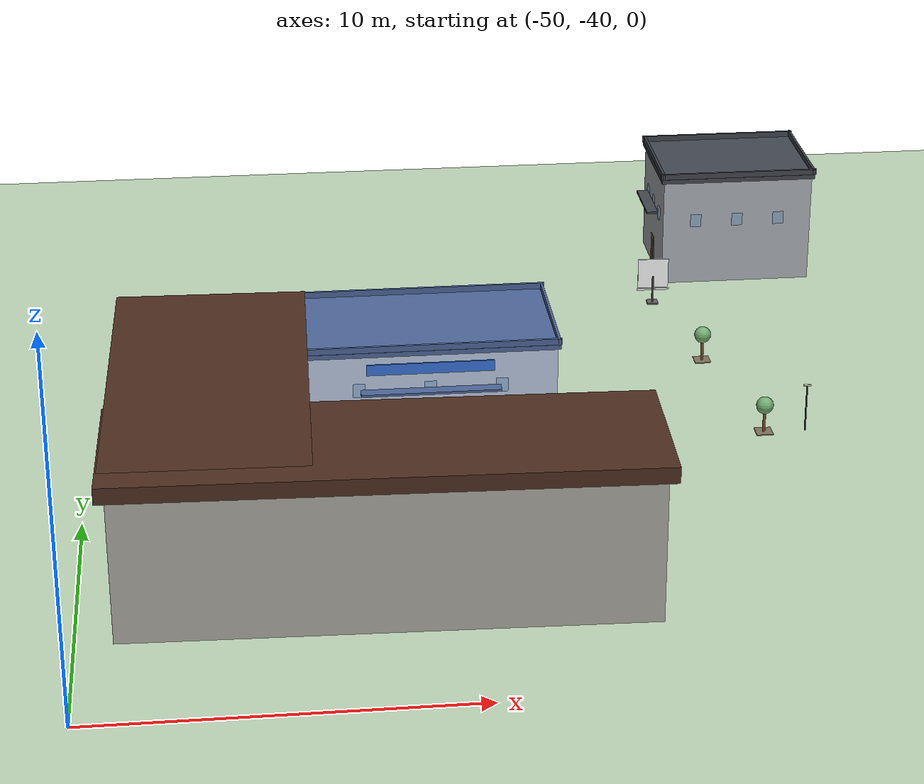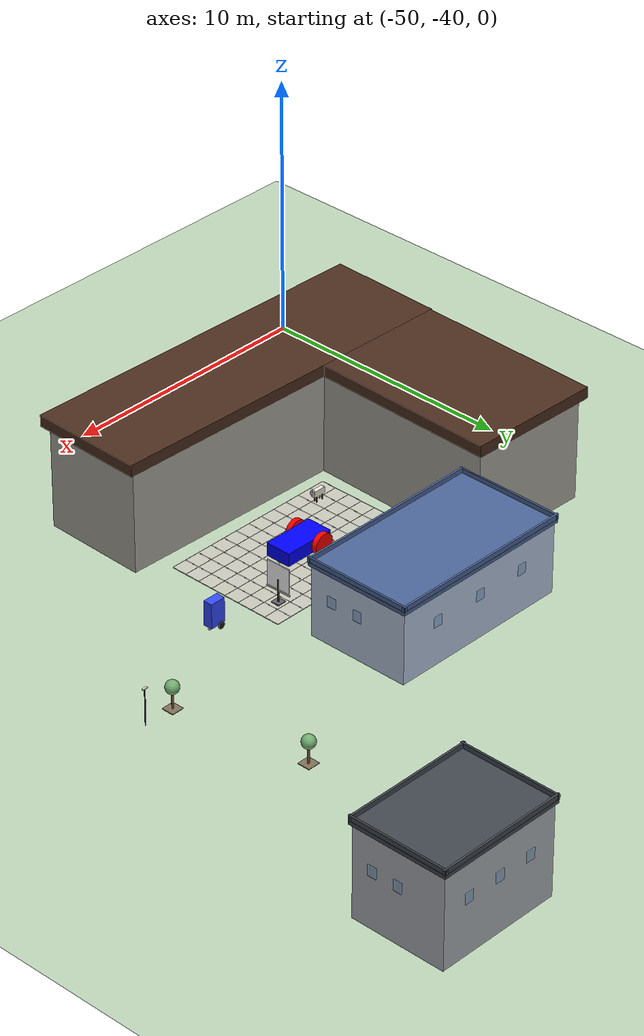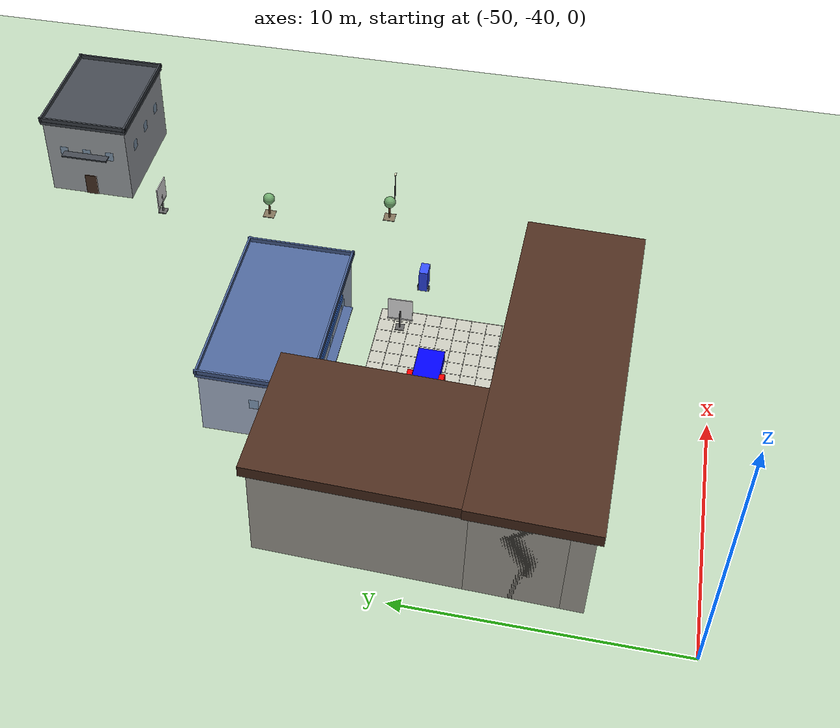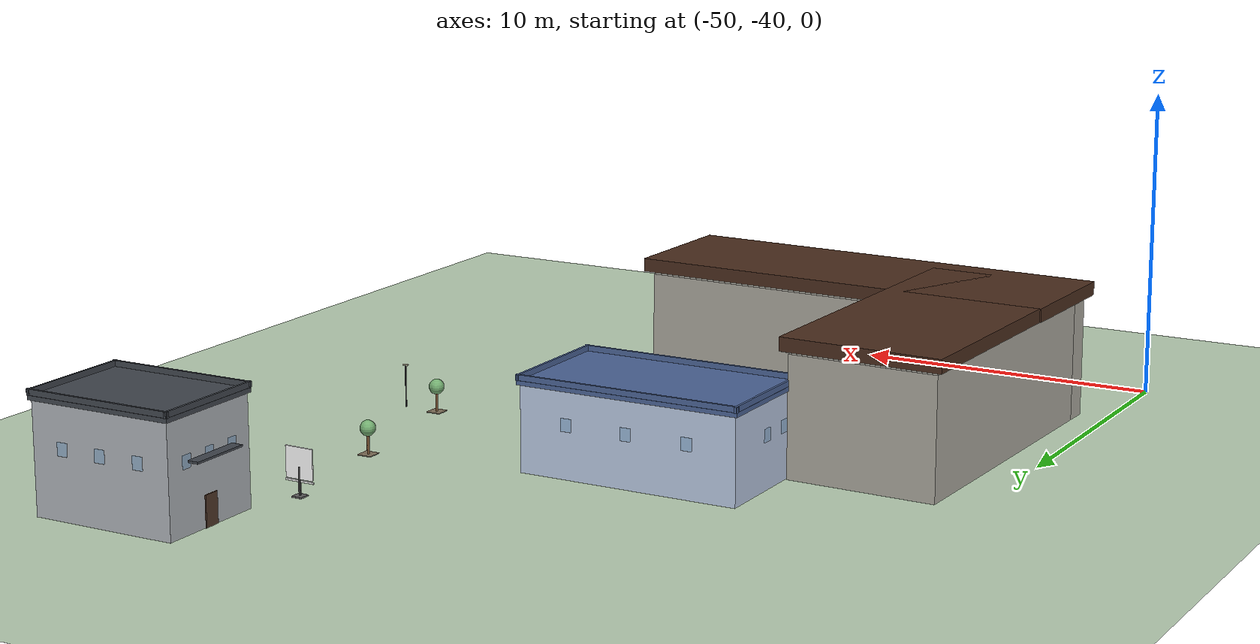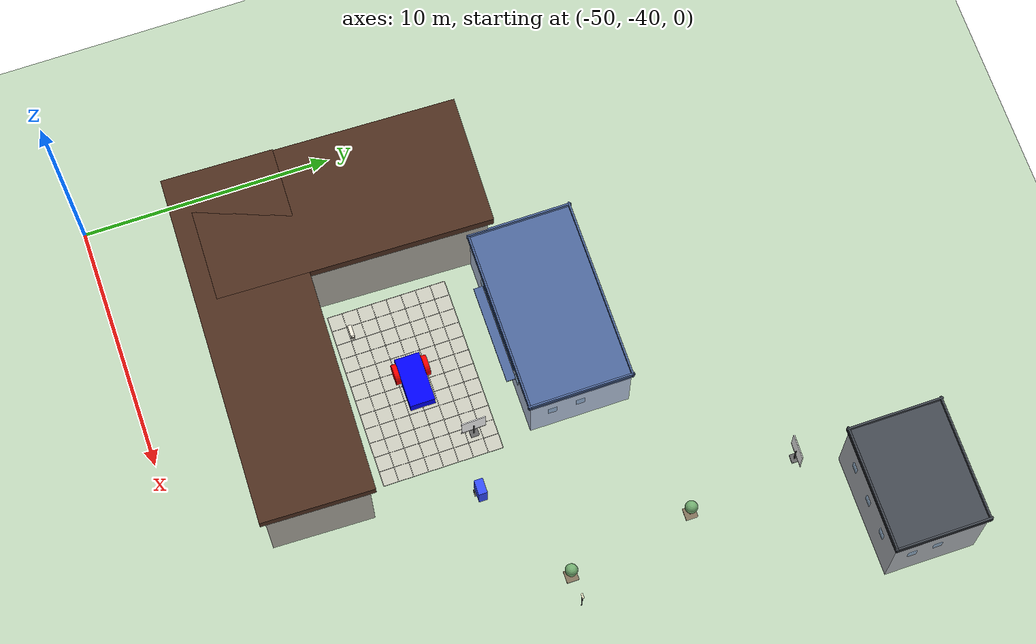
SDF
<sdf version="1.10">
 <world name="city_town_real_improved">
  <model name="dock_pad">
   <static>true</static>
   <pose>-40 -29.6 0 0 0 0</pose>
   <link name="link">
    <collision name="plaza_col">
     <pose>0 0 0.008 0 0 0</pose>
     <geometry><box><size>7.2 4.8 0.016</size></box></geometry>
    </collision>
    <visual name="plaza_vis">
     <pose>0 0 0.008 0 0 0</pose>
     <geometry><box><size>7.2 4.8 0.016</size></box></geometry>
     <material>
      <ambient>0.779999971 0.779999971 0.730000019 1</ambient>
      <diffuse>0.779999971 0.779999971 0.730000019 1</diffuse>
      <specular>0.0799999982 0.0799999982 0.0799999982 1</specular>
     </material>
    </visual>
    <visual name="gx0">
     <pose>-3.6 0 0.0164 0 0 0</pose>
     <geometry><box><size>0.016 4.8 0.002</size></box></geometry>
     <material>
      <ambient>0.639999986 0.639999986 0.600000024 1</ambient>
      <diffuse>0.639999986 0.639999986 0.600000024 1</diffuse>
      <specular>0.0799999982 0.0799999982 0.0799999982 1</specular>
     </material>
    </visual>
    <visual name="gx1">
     <pose>-3 0 0.0164 0 0 0</pose>
     <geometry><box><size>0.016 4.8 0.002</size></box></geometry>
     <material>
      <ambient>0.639999986 0.639999986 0.600000024 1</ambient>
      <diffuse>0.639999986 0.639999986 0.600000024 1</diffuse>
      <specular>0.0799999982 0.0799999982 0.0799999982 1</specular>
     </material>
    </visual>
    <visual name="gx2">
     <pose>-2.4 0 0.0164 0 0 0</pose>
     <geometry><box><size>0.016 4.8 0.002</size></box></geometry>
     <material>
      <ambient>0.639999986 0.639999986 0.600000024 1</ambient>
      <diffuse>0.639999986 0.639999986 0.600000024 1</diffuse>
      <specular>0.0799999982 0.0799999982 0.0799999982 1</specular>
     </material>
    </visual>
    <visual name="gx3">
     <pose>-1.8 0 0.0164 0 0 0</pose>
     <geometry><box><size>0.016 4.8 0.002</size></box></geometry>
     <material>
      <ambient>0.639999986 0.639999986 0.600000024 1</ambient>
      <diffuse>0.639999986 0.639999986 0.600000024 1</diffuse>
      <specular>0.0799999982 0.0799999982 0.0799999982 1</specular>
     </material>
    </visual>
    <visual name="gx4">
     <pose>-1.2 0 0.0164 0 0 0</pose>
     <geometry><box><size>0.016 4.8 0.002</size></box></geometry>
     <material>
      <ambient>0.639999986 0.639999986 0.600000024 1</ambient>
      <diffuse>0.639999986 0.639999986 0.600000024 1</diffuse>
      <specular>0.0799999982 0.0799999982 0.0799999982 1</specular>
     </material>
    </visual>
    <visual name="gx5">
     <pose>-0.6 0 0.0164 0 0 0</pose>
     <geometry><box><size>0.016 4.8 0.002</size></box></geometry>
     <material>
      <ambient>0.639999986 0.639999986 0.600000024 1</ambient>
      <diffuse>0.639999986 0.639999986 0.600000024 1</diffuse>
      <specular>0.0799999982 0.0799999982 0.0799999982 1</specular>
     </material>
    </visual>
    <visual name="gx6">
     <pose>0 0 0.0164 0 0 0</pose>
     <geometry><box><size>0.016 4.8 0.002</size></box></geometry>
     <material>
      <ambient>0.639999986 0.639999986 0.600000024 1</ambient>
      <diffuse>0.639999986 0.639999986 0.600000024 1</diffuse>
      <specular>0.0799999982 0.0799999982 0.0799999982 1</specular>
     </material>
    </visual>
    <visual name="gx7">
     <pose>0.6 0 0.0164 0 0 0</pose>
     <geometry><box><size>0.016 4.8 0.002</size></box></geometry>
     <material>
      <ambient>0.639999986 0.639999986 0.600000024 1</ambient>
      <diffuse>0.639999986 0.639999986 0.600000024 1</diffuse>
      <specular>0.0799999982 0.0799999982 0.0799999982 1</specular>
     </material>
    </visual>
    <visual name="gx8">
     <pose>1.2 0 0.0164 0 0 0</pose>
     <geometry><box><size>0.016 4.8 0.002</size></box></geometry>
     <material>
      <ambient>0.639999986 0.639999986 0.600000024 1</ambient>
      <diffuse>0.639999986 0.639999986 0.600000024 1</diffuse>
      <specular>0.0799999982 0.0799999982 0.0799999982 1</specular>
     </material>
    </visual>
    <visual name="gx9">
     <pose>1.8 0 0.0164 0 0 0</pose>
     <geometry><box><size>0.016 4.8 0.002</size></box></geometry>
     <material>
      <ambient>0.639999986 0.639999986 0.600000024 1</ambient>
      <diffuse>0.639999986 0.639999986 0.600000024 1</diffuse>
      <specular>0.0799999982 0.0799999982 0.0799999982 1</specular>
     </material>
    </visual>
    <visual name="gx10">
     <pose>2.4 0 0.0164 0 0 0</pose>
     <geometry><box><size>0.016 4.8 0.002</size></box></geometry>
     <material>
      <ambient>0.639999986 0.639999986 0.600000024 1</ambient>
      <diffuse>0.639999986 0.639999986 0.600000024 1</diffuse>
      <specular>0.0799999982 0.0799999982 0.0799999982 1</specular>
     </material>
    </visual>
    <visual name="gx11">
     <pose>3 0 0.0164 0 0 0</pose>
     <geometry><box><size>0.016 4.8 0.002</size></box></geometry>
     <material>
      <ambient>0.639999986 0.639999986 0.600000024 1</ambient>
      <diffuse>0.639999986 0.639999986 0.600000024 1</diffuse>
      <specular>0.0799999982 0.0799999982 0.0799999982 1</specular>
     </material>
    </visual>
    <visual name="gx12">
     <pose>3.6 0 0.0164 0 0 0</pose>
     <geometry><box><size>0.016 4.8 0.002</size></box></geometry>
     <material>
      <ambient>0.639999986 0.639999986 0.600000024 1</ambient>
      <diffuse>0.639999986 0.639999986 0.600000024 1</diffuse>
      <specular>0.0799999982 0.0799999982 0.0799999982 1</specular>
     </material>
    </visual>
    <visual name="gy0">
     <pose>0 -2.4 0.0164 0 0 0</pose>
     <geometry><box><size>7.2 0.016 0.002</size></box></geometry>
     <material>
      <ambient>0.639999986 0.639999986 0.600000024 1</ambient>
      <diffuse>0.639999986 0.639999986 0.600000024 1</diffuse>
      <specular>0.0799999982 0.0799999982 0.0799999982 1</specular>
     </material>
    </visual>
    <visual name="gy1">
     <pose>0 -1.8 0.0164 0 0 0</pose>
     <geometry><box><size>7.2 0.016 0.002</size></box></geometry>
     <material>
      <ambient>0.639999986 0.639999986 0.600000024 1</ambient>
      <diffuse>0.639999986 0.639999986 0.600000024 1</diffuse>
      <specular>0.0799999982 0.0799999982 0.0799999982 1</specular>
     </material>
    </visual>
    <visual name="gy2">
     <pose>0 -1.2 0.0164 0 0 0</pose>
     <geometry><box><size>7.2 0.016 0.002</size></box></geometry>
     <material>
      <ambient>0.639999986 0.639999986 0.600000024 1</ambient>
      <diffuse>0.639999986 0.639999986 0.600000024 1</diffuse>
      <specular>0.0799999982 0.0799999982 0.0799999982 1</specular>
     </material>
    </visual>
    <visual name="gy3">
     <pose>0 -0.6 0.0164 0 0 0</pose>
     <geometry><box><size>7.2 0.016 0.002</size></box></geometry>
     <material>
      <ambient>0.639999986 0.639999986 0.600000024 1</ambient>
      <diffuse>0.639999986 0.639999986 0.600000024 1</diffuse>
      <specular>0.0799999982 0.0799999982 0.0799999982 1</specular>
     </material>
    </visual>
    <visual name="gy4">
     <pose>0 0 0.0164 0 0 0</pose>
     <geometry><box><size>7.2 0.016 0.002</size></box></geometry>
     <material>
      <ambient>0.639999986 0.639999986 0.600000024 1</ambient>
      <diffuse>0.639999986 0.639999986 0.600000024 1</diffuse>
      <specular>0.0799999982 0.0799999982 0.0799999982 1</specular>
     </material>
    </visual>
    <visual name="gy5">
     <pose>0 0.6 0.0164 0 0 0</pose>
     <geometry><box><size>7.2 0.016 0.002</size></box></geometry>
     <material>
      <ambient>0.639999986 0.639999986 0.600000024 1</ambient>
      <diffuse>0.639999986 0.639999986 0.600000024 1</diffuse>
      <specular>0.0799999982 0.0799999982 0.0799999982 1</specular>
     </material>
    </visual>
    <visual name="gy6">
     <pose>0 1.2 0.0164 0 0 0</pose>
     <geometry><box><size>7.2 0.016 0.002</size></box></geometry>
     <material>
      <ambient>0.639999986 0.639999986 0.600000024 1</ambient>
      <diffuse>0.639999986 0.639999986 0.600000024 1</diffuse>
      <specular>0.0799999982 0.0799999982 0.0799999982 1</specular>
     </material>
    </visual>
    <visual name="gy7">
     <pose>0 1.8 0.0164 0 0 0</pose>
     <geometry><box><size>7.2 0.016 0.002</size></box></geometry>
     <material>
      <ambient>0.639999986 0.639999986 0.600000024 1</ambient>
      <diffuse>0.639999986 0.639999986 0.600000024 1</diffuse>
      <specular>0.0799999982 0.0799999982 0.0799999982 1</specular>
     </material>
    </visual>
    <visual name="gy8">
     <pose>0 2.4 0.0164 0 0 0</pose>
     <geometry><box><size>7.2 0.016 0.002</size></box></geometry>
     <material>
      <ambient>0.639999986 0.639999986 0.600000024 1</ambient>
      <diffuse>0.639999986 0.639999986 0.600000024 1</diffuse>
      <specular>0.0799999982 0.0799999982 0.0799999982 1</specular>
     </material>
    </visual>
    <inertial>
     <mass>1</mass>
     <inertia><ixx>1</ixx><ixy>0</ixy><ixz>0</ixz><iyy>1</iyy><iyz>0</iyz><izz>1</izz></inertia>
    </inertial>
   </link>
  </model>
  <model name="docking_station">
   <static>true</static>
   <pose>-40.3145965576172 -24 0 0 0 0</pose>
   <link name="link">
    <collision name="body_col">
     <pose>0 0 1.36 0 0 0</pose>
     <geometry><box><size>7.2 4 2.72</size></box></geometry>
    </collision>
    <visual name="body_vis">
     <pose>0 0 1.36 0 0 0</pose>
     <geometry><box><size>7.2 4 2.72</size></box></geometry>
     <material>
      <ambient>0.74000001 0.800000012 0.899999976 1</ambient>
      <diffuse>0.74000001 0.800000012 0.899999976 1</diffuse>
      <specular>0.0799999982 0.0799999982 0.0799999982 1</specular>
     </material>
    </visual>
    <collision name="roof_col">
     <pose>0 0 2.79 0 0 0</pose>
     <geometry><box><size>7.36 4.16 0.14</size></box></geometry>
    </collision>
    <visual name="roof_vis">
     <pose>0 0 2.79 0 0 0</pose>
     <geometry><box><size>7.36 4.16 0.14</size></box></geometry>
     <material>
      <ambient>0.300000012 0.400000006 0.600000024 1</ambient>
      <diffuse>0.300000012 0.400000006 0.600000024 1</diffuse>
      <specular>0.0799999982 0.0799999982 0.0799999982 1</specular>
     </material>
    </visual>
    <visual name="p1_vis">
     <pose>0 2.036 2.948 0 0 0</pose>
     <geometry><box><size>7.42 0.072 0.18</size></box></geometry>
     <material>
      <ambient>0.300000012 0.400000006 0.600000024 1</ambient>
      <diffuse>0.300000012 0.400000006 0.600000024 1</diffuse>
      <specular>0.0799999982 0.0799999982 0.0799999982 1</specular>
     </material>
    </visual>
    <visual name="p2_vis">
     <pose>0 -2.036 2.948 0 0 0</pose>
     <geometry><box><size>7.42 0.072 0.18</size></box></geometry>
     <material>
      <ambient>0.300000012 0.400000006 0.600000024 1</ambient>
      <diffuse>0.300000012 0.400000006 0.600000024 1</diffuse>
      <specular>0.0799999982 0.0799999982 0.0799999982 1</specular>
     </material>
    </visual>
    <visual name="p3_vis">
     <pose>3.636 0 2.948 0 0 0</pose>
     <geometry><box><size>0.072 4.22 0.18</size></box></geometry>
     <material>
      <ambient>0.300000012 0.400000006 0.600000024 1</ambient>
      <diffuse>0.300000012 0.400000006 0.600000024 1</diffuse>
      <specular>0.0799999982 0.0799999982 0.0799999982 1</specular>
     </material>
    </visual>
    <visual name="p4_vis">
     <pose>-3.636 0 2.948 0 0 0</pose>
     <geometry><box><size>0.072 4.22 0.18</size></box></geometry>
     <material>
      <ambient>0.300000012 0.400000006 0.600000024 1</ambient>
      <diffuse>0.300000012 0.400000006 0.600000024 1</diffuse>
      <specular>0.0799999982 0.0799999982 0.0799999982 1</specular>
     </material>
    </visual>
    <visual name="door_vis">
     <pose>0 -2.016 0.48 0 0 0</pose>
     <geometry><box><size>0.52 0.04 0.96</size></box></geometry>
     <material>
      <ambient>0.319999993 0.219999999 0.159999996 1</ambient>
      <diffuse>0.319999993 0.219999999 0.159999996 1</diffuse>
      <specular>0.0799999982 0.0799999982 0.0799999982 1</specular>
     </material>
    </visual>
    <visual name="win_south_0">
     <pose>-2.016 -2.012 1.6864 0 0 0</pose>
     <geometry><box><size>0.34 0.032 0.4</size></box></geometry>
     <material>
      <ambient>0.550000012 0.720000029 0.879999995 0.550000012</ambient>
      <diffuse>0.550000012 0.720000029 0.879999995 0.550000012</diffuse>
      <specular>0.0799999982 0.0799999982 0.0799999982 1</specular>
      <transparency>0.35</transparency>
     </material>
    </visual>
    <visual name="win_south_1">
     <pose>0 -2.012 1.6864 0 0 0</pose>
     <geometry><box><size>0.34 0.032 0.4</size></box></geometry>
     <material>
      <ambient>0.550000012 0.720000029 0.879999995 0.550000012</ambient>
      <diffuse>0.550000012 0.720000029 0.879999995 0.550000012</diffuse>
      <specular>0.0799999982 0.0799999982 0.0799999982 1</specular>
      <transparency>0.35</transparency>
     </material>
    </visual>
    <visual name="win_south_2">
     <pose>2.016 -2.012 1.6864 0 0 0</pose>
     <geometry><box><size>0.34 0.032 0.4</size></box></geometry>
     <material>
      <ambient>0.550000012 0.720000029 0.879999995 0.550000012</ambient>
      <diffuse>0.550000012 0.720000029 0.879999995 0.550000012</diffuse>
      <specular>0.0799999982 0.0799999982 0.0799999982 1</specular>
      <transparency>0.35</transparency>
     </material>
    </visual>
    <visual name="win_west_0">
     <pose>-3.612 -1.12 1.6864 0 0 0</pose>
     <geometry><box><size>0.032 0.34 0.4</size></box></geometry>
     <material>
      <ambient>0.550000012 0.720000029 0.879999995 0.550000012</ambient>
      <diffuse>0.550000012 0.720000029 0.879999995 0.550000012</diffuse>
      <specular>0.0799999982 0.0799999982 0.0799999982 1</specular>
      <transparency>0.35</transparency>
     </material>
    </visual>
    <visual name="win_west_1">
     <pose>-3.612 0 1.6864 0 0 0</pose>
     <geometry><box><size>0.032 0.34 0.4</size></box></geometry>
     <material>
      <ambient>0.550000012 0.720000029 0.879999995 0.550000012</ambient>
      <diffuse>0.550000012 0.720000029 0.879999995 0.550000012</diffuse>
      <specular>0.0799999982 0.0799999982 0.0799999982 1</specular>
      <transparency>0.35</transparency>
     </material>
    </visual>
    <visual name="win_east_0">
     <pose>3.612 -1.12 1.6864 0 0 0</pose>
     <geometry><box><size>0.032 0.34 0.4</size></box></geometry>
     <material>
      <ambient>0.550000012 0.720000029 0.879999995 0.550000012</ambient>
      <diffuse>0.550000012 0.720000029 0.879999995 0.550000012</diffuse>
      <specular>0.0799999982 0.0799999982 0.0799999982 1</specular>
      <transparency>0.35</transparency>
     </material>
    </visual>
    <visual name="win_east_1">
     <pose>3.612 0 1.6864 0 0 0</pose>
     <geometry><box><size>0.032 0.34 0.4</size></box></geometry>
     <material>
      <ambient>0.550000012 0.720000029 0.879999995 0.550000012</ambient>
      <diffuse>0.550000012 0.720000029 0.879999995 0.550000012</diffuse>
      <specular>0.0799999982 0.0799999982 0.0799999982 1</specular>
      <transparency>0.35</transparency>
     </material>
    </visual>
    <visual name="win_north_0">
     <pose>-2.016 2.012 1.6864 0 0 0</pose>
     <geometry><box><size>0.34 0.032 0.4</size></box></geometry>
     <material>
      <ambient>0.550000012 0.720000029 0.879999995 0.550000012</ambient>
      <diffuse>0.550000012 0.720000029 0.879999995 0.550000012</diffuse>
      <specular>0.0799999982 0.0799999982 0.0799999982 1</specular>
      <transparency>0.35</transparency>
     </material>
    </visual>
    <visual name="win_north_1">
     <pose>0 2.012 1.6864 0 0 0</pose>
     <geometry><box><size>0.34 0.032 0.4</size></box></geometry>
     <material>
      <ambient>0.550000012 0.720000029 0.879999995 0.550000012</ambient>
      <diffuse>0.550000012 0.720000029 0.879999995 0.550000012</diffuse>
      <specular>0.0799999982 0.0799999982 0.0799999982 1</specular>
      <transparency>0.35</transparency>
     </material>
    </visual>
    <visual name="win_north_2">
     <pose>2.016 2.012 1.6864 0 0 0</pose>
     <geometry><box><size>0.34 0.032 0.4</size></box></geometry>
     <material>
      <ambient>0.550000012 0.720000029 0.879999995 0.550000012</ambient>
      <diffuse>0.550000012 0.720000029 0.879999995 0.550000012</diffuse>
      <specular>0.0799999982 0.0799999982 0.0799999982 1</specular>
      <transparency>0.35</transparency>
     </material>
    </visual>
    <visual name="awning">
     <pose>0 -2.22 1.6864 0 0 0</pose>
     <geometry><box><size>3.96 0.36 0.064</size></box></geometry>
     <material>
      <ambient>0.300000012 0.400000006 0.600000024 1</ambient>
      <diffuse>0.300000012 0.400000006 0.600000024 1</diffuse>
      <specular>0.0799999982 0.0799999982 0.0799999982 1</specular>
     </material>
    </visual>
    <visual name="sign_vis">
     <pose>0 -2.028 2.312 0 0 0</pose>
     <geometry><box><size>3.6 0.048 0.32</size></box></geometry>
     <material>
      <ambient>0.219999999 0.449999988 0.860000014 1</ambient>
      <diffuse>0.219999999 0.449999988 0.860000014 1</diffuse>
      <specular>0.0799999982 0.0799999982 0.0799999982 1</specular>
     </material>
    </visual>
    <inertial>
     <mass>1</mass>
     <inertia><ixx>1</ixx><ixy>0</ixy><ixz>0</ixz><iyy>1</iyy><iyz>0</iyz><izz>1</izz></inertia>
    </inertial>
   </link>
  </model>
  <include>
   <uri>file:///home/hadi/amr_project/sdf/service_robot</uri>
   <name>service_robot</name>
   <pose>-40.4 -29.6 0 0 0 0</pose>
  </include>
  <model name="tree_0">
   <static>true</static>
   <pose>-45.1554290771484 -26.4 0 0 0 0</pose>
   <link name="link">
    <collision name="soil_col">
     <pose>0 0 0.012 0 0 0</pose>
     <geometry><box><size>0.48 0.48 0.024</size></box></geometry>
    </collision>
    <visual name="soil_vis">
     <pose>0 0 0.012 0 0 0</pose>
     <geometry><box><size>0.48 0.48 0.024</size></box></geometry>
     <material>
      <ambient>0.5 0.439999998 0.349999994 1</ambient>
      <diffuse>0.5 0.439999998 0.349999994 1</diffuse>
      <specular>0.0799999982 0.0799999982 0.0799999982 1</specular>
     </material>
    </visual>
    <collision name="trunk_col">
     <pose>0 0 0.36 0 0 0</pose>
     <geometry><cylinder><radius>0.04</radius><length>0.72</length></cylinder></geometry>
    </collision>
    <visual name="trunk_vis">
     <pose>0 0 0.36 0 0 0</pose>
     <geometry><cylinder><radius>0.04</radius><length>0.72</length></cylinder></geometry>
     <material>
      <ambient>0.449999988 0.310000002 0.180000007 1</ambient>
      <diffuse>0.449999988 0.310000002 0.180000007 1</diffuse>
      <specular>0.0799999982 0.0799999982 0.0799999982 1</specular>
     </material>
    </visual>
    <visual name="crown_vis">
     <pose>0 0 0.84 0 0 0</pose>
     <geometry><sphere><radius>0.248</radius></sphere></geometry>
     <material>
      <ambient>0.449999988 0.680000007 0.439999998 1</ambient>
      <diffuse>0.449999988 0.680000007 0.439999998 1</diffuse>
      <specular>0.0799999982 0.0799999982 0.0799999982 1</specular>
     </material>
    </visual>
    <inertial>
     <mass>1</mass>
     <inertia><ixx>1</ixx><ixy>0</ixy><ixz>0</ixz><iyy>1</iyy><iyz>0</iyz><izz>1</izz></inertia>
    </inertial>
   </link>
  </model>
  <model name="tree_1">
   <static>true</static>
   <pose>-30.8 -26.4 0 0 0 0</pose>
   <link name="link">
    <collision name="soil_col">
     <pose>0 0 0.012 0 0 0</pose>
     <geometry><box><size>0.48 0.48 0.024</size></box></geometry>
    </collision>
    <visual name="soil_vis">
     <pose>0 0 0.012 0 0 0</pose>
     <geometry><box><size>0.48 0.48 0.024</size></box></geometry>
     <material>
      <ambient>0.5 0.439999998 0.349999994 1</ambient>
      <diffuse>0.5 0.439999998 0.349999994 1</diffuse>
      <specular>0.0799999982 0.0799999982 0.0799999982 1</specular>
     </material>
    </visual>
    <collision name="trunk_col">
     <pose>0 0 0.36 0 0 0</pose>
     <geometry><cylinder><radius>0.04</radius><length>0.72</length></cylinder></geometry>
    </collision>
    <visual name="trunk_vis">
     <pose>0 0 0.36 0 0 0</pose>
     <geometry><cylinder><radius>0.04</radius><length>0.72</length></cylinder></geometry>
     <material>
      <ambient>0.449999988 0.310000002 0.180000007 1</ambient>
      <diffuse>0.449999988 0.310000002 0.180000007 1</diffuse>
      <specular>0.0799999982 0.0799999982 0.0799999982 1</specular>
     </material>
    </visual>
    <visual name="crown_vis">
     <pose>0 0 0.84 0 0 0</pose>
     <geometry><sphere><radius>0.248</radius></sphere></geometry>
     <material>
      <ambient>0.449999988 0.680000007 0.439999998 1</ambient>
      <diffuse>0.449999988 0.680000007 0.439999998 1</diffuse>
      <specular>0.0799999982 0.0799999982 0.0799999982 1</specular>
     </material>
    </visual>
    <inertial>
     <mass>1</mass>
     <inertia><ixx>1</ixx><ixy>0</ixy><ixz>0</ixz><iyy>1</iyy><iyz>0</iyz><izz>1</izz></inertia>
    </inertial>
   </link>
  </model>
  <model name="lamp_0">
   <static>true</static>
   <pose>-29.6 -26.4 0 0 0 0</pose>
   <link name="link">
    <collision name="pole_col">
     <pose>0 0 0.68 0 0 0</pose>
     <geometry><cylinder><radius>0.02</radius><length>1.36</length></cylinder></geometry>
    </collision>
    <visual name="pole_vis">
     <pose>0 0 0.68 0 0 0</pose>
     <geometry><cylinder><radius>0.02</radius><length>1.36</length></cylinder></geometry>
     <material>
      <ambient>0.25 0.25 0.270000011 1</ambient>
      <diffuse>0.25 0.25 0.270000011 1</diffuse>
      <specular>0.0799999982 0.0799999982 0.0799999982 1</specular>
     </material>
    </visual>
    <visual name="head_vis">
     <pose>0 0 1.408 0 0 0</pose>
     <geometry><box><size>0.2 0.072 0.04</size></box></geometry>
     <material>
      <ambient>0.920000017 0.910000026 0.779999971 1</ambient>
      <diffuse>0.920000017 0.910000026 0.779999971 1</diffuse>
      <specular>0.0799999982 0.0799999982 0.0799999982 1</specular>
     </material>
    </visual>
    <inertial>
     <mass>1</mass>
     <inertia><ixx>1</ixx><ixy>0</ixy><ixz>0</ixz><iyy>1</iyy><iyz>0</iyz><izz>1</izz></inertia>
    </inertial>
   </link>
  </model>
  <model name="dock_qr_sign">
   <static>true</static>
   <pose>-37.3294403076172 -28.0697082519531 0 0 0 -1.54531997472983</pose>
   <link name="link">
    <collision name="post_col">
     <pose>0 0 0.46 0 0 0</pose>
     <geometry><box><size>0.056 0.056 0.92</size></box></geometry>
    </collision>
    <visual name="post_vis">
     <pose>0 0 0.46 0 0 0</pose>
     <geometry><box><size>0.056 0.056 0.92</size></box></geometry>
     <material>
      <ambient>0.239999995 0.239999995 0.239999995 1</ambient>
      <diffuse>0.239999995 0.239999995 0.239999995 1</diffuse>
      <specular>0.0799999982 0.0799999982 0.0799999982 1</specular>
     </material>
    </visual>
    <collision name="base_col">
     <pose>0 0 0.024 0 0 0</pose>
     <geometry><box><size>0.34 0.34 0.048</size></box></geometry>
    </collision>
    <visual name="base_vis">
     <pose>0 0 0.024 0 0 0</pose>
     <geometry><box><size>0.34 0.34 0.048</size></box></geometry>
     <material>
      <ambient>0.379999995 0.379999995 0.379999995 1</ambient>
      <diffuse>0.379999995 0.379999995 0.379999995 1</diffuse>
      <specular>0.0799999982 0.0799999982 0.0799999982 1</specular>
     </material>
    </visual>
    <visual name="back_vis">
     <pose>0 0 0.48 0 0 0</pose>
     <geometry><box><size>1.02 0.024 0.06</size></box></geometry>
     <material>
      <ambient>0.920000017 0.920000017 0.920000017 1</ambient>
      <diffuse>0.920000017 0.920000017 0.920000017 1</diffuse>
      <specular>0.0500000007 0.0500000007 0.0500000007 1</specular>
     </material>
    </visual>
    <visual name="qr_vis">
     <pose>0 0 1.02 0 0 0</pose>
     <geometry><box><size>0.96 0.04 0.96</size></box></geometry>
     <material>
      <ambient>1 1 1 1</ambient>
      <diffuse>1 1 1 1</diffuse>
      <specular>0.0500000007 0.0500000007 0.0500000007 1</specular>
      <pbr>
       <metal><albedo_map>qr_codes/DOCK.png</albedo_map><metalness>0.0</metalness><roughness>1.0</roughness></metal>
      </pbr>
     </material>
    </visual>
    <inertial>
     <mass>1</mass>
     <inertia><ixx>1</ixx><ixy>0</ixy><ixz>0</ixz><iyy>1</iyy><iyz>0</iyz><izz>1</izz></inertia>
    </inertial>
   </link>
  </model>
  <model name="fire_station_qr_sign">
   <static>true</static>
   <pose>-32.4094604492187 -16.803337097168 0 0 0 3.12119999981607</pose>
   <link name="link">
    <collision name="post_col">
     <pose>0 0 0.46 0 0 0</pose>
     <geometry><box><size>0.056 0.056 0.92</size></box></geometry>
    </collision>
    <visual name="post_vis">
     <pose>0 0 0.46 0 0 0</pose>
     <geometry><box><size>0.056 0.056 0.92</size></box></geometry>
     <material>
      <ambient>0.239999995 0.239999995 0.239999995 1</ambient>
      <diffuse>0.239999995 0.239999995 0.239999995 1</diffuse>
      <specular>0.0799999982 0.0799999982 0.0799999982 1</specular>
     </material>
    </visual>
    <collision name="base_col">
     <pose>0 0 0.024 0 0 0</pose>
     <geometry><box><size>0.34 0.34 0.048</size></box></geometry>
    </collision>
    <visual name="base_vis">
     <pose>0 0 0.024 0 0 0</pose>
     <geometry><box><size>0.34 0.34 0.048</size></box></geometry>
     <material>
      <ambient>0.379999995 0.379999995 0.379999995 1</ambient>
      <diffuse>0.379999995 0.379999995 0.379999995 1</diffuse>
      <specular>0.0799999982 0.0799999982 0.0799999982 1</specular>
     </material>
    </visual>
    <visual name="back_vis">
     <pose>0 0 0.48 0 0 0</pose>
     <geometry><box><size>1.02 0.024 0.06</size></box></geometry>
     <material>
      <ambient>0.920000017 0.920000017 0.920000017 1</ambient>
      <diffuse>0.920000017 0.920000017 0.920000017 1</diffuse>
      <specular>0.0500000007 0.0500000007 0.0500000007 1</specular>
     </material>
    </visual>
    <visual name="qr_vis">
     <pose>0 0 1.02 0 0 0</pose>
     <geometry><box><size>0.96 0.04 0.96</size></box></geometry>
     <material>
      <ambient>1 1 1 1</ambient>
      <diffuse>1 1 1 1</diffuse>
      <specular>0.0500000007 0.0500000007 0.0500000007 1</specular>
      <pbr>
       <metal>
        <albedo_map>qr_codes/FIRE_STATION.png</albedo_map>
        <metalness>0.0</metalness>
        <roughness>1.0</roughness>
       </metal>
      </pbr>
     </material>
    </visual>
    <inertial>
     <mass>1</mass>
     <inertia><ixx>1</ixx><ixy>0</ixy><ixz>0</ixz><iyy>1</iyy><iyz>0</iyz><izz>1</izz></inertia>
    </inertial>
   </link>
  </model>
  <model name="gallery_goat_placeholder_1_5">
   <static>true</static>
   <pose>-42.6343487888994 -31.3023465040246 0 0 0 0</pose>
   <link name="goat">
    <collision name="body_collision">
     <pose>0 0 0.36 0 0 0</pose>
     <geometry><box><size>0.48 0.152 0.24</size></box></geometry>
    </collision>
    <collision name="head_collision">
     <pose>0.28 0 0.448 0 0 0</pose>
     <geometry><box><size>0.14 0.088 0.112</size></box></geometry>
    </collision>
    <collision name="leg1_collision">
     <pose>-0.14 0.052 0.152 0 0 0</pose>
     <geometry><cylinder><radius>0.02</radius><length>0.304</length></cylinder></geometry>
    </collision>
    <collision name="leg2_collision">
     <pose>-0.14 -0.052 0.152 0 0 0</pose>
     <geometry><cylinder><radius>0.02</radius><length>0.304</length></cylinder></geometry>
    </collision>
    <collision name="leg3_collision">
     <pose>0.112 0.052 0.152 0 0 0</pose>
     <geometry><cylinder><radius>0.02</radius><length>0.304</length></cylinder></geometry>
    </collision>
    <collision name="leg4_collision">
     <pose>0.112 -0.052 0.152 0 0 0</pose>
     <geometry><cylinder><radius>0.02</radius><length>0.304</length></cylinder></geometry>
    </collision>
    <visual name="body_visual">
     <pose>0 0 0.36 0 0 0</pose>
     <geometry><box><size>0.48 0.152 0.24</size></box></geometry>
     <material>
      <ambient>0.930000007 0.910000026 0.839999974 1</ambient>
      <diffuse>0.930000007 0.910000026 0.839999974 1</diffuse>
      <specular>0.0500000007 0.0500000007 0.0500000007 1</specular>
     </material>
    </visual>
    <visual name="head_visual">
     <pose>0.28 0 0.448 0 0 0</pose>
     <geometry><box><size>0.14 0.088 0.112</size></box></geometry>
     <material>
      <ambient>0.930000007 0.910000026 0.839999974 1</ambient>
      <diffuse>0.930000007 0.910000026 0.839999974 1</diffuse>
      <specular>0.0500000007 0.0500000007 0.0500000007 1</specular>
     </material>
    </visual>
    <visual name="leg1_visual">
     <pose>-0.14 0.052 0.152 0 0 0</pose>
     <geometry><cylinder><radius>0.02</radius><length>0.304</length></cylinder></geometry>
     <material>
      <ambient>0.349999994 0.270000011 0.180000007 1</ambient>
      <diffuse>0.349999994 0.270000011 0.180000007 1</diffuse>
     </material>
    </visual>
    <visual name="leg2_visual">
     <pose>-0.14 -0.052 0.152 0 0 0</pose>
     <geometry><cylinder><radius>0.02</radius><length>0.304</length></cylinder></geometry>
     <material>
      <ambient>0.349999994 0.270000011 0.180000007 1</ambient>
      <diffuse>0.349999994 0.270000011 0.180000007 1</diffuse>
     </material>
    </visual>
    <visual name="leg3_visual">
     <pose>0.112 0.052 0.152 0 0 0</pose>
     <geometry><cylinder><radius>0.02</radius><length>0.304</length></cylinder></geometry>
     <material>
      <ambient>0.349999994 0.270000011 0.180000007 1</ambient>
      <diffuse>0.349999994 0.270000011 0.180000007 1</diffuse>
     </material>
    </visual>
    <visual name="leg4_visual">
     <pose>0.112 -0.052 0.152 0 0 0</pose>
     <geometry><cylinder><radius>0.02</radius><length>0.304</length></cylinder></geometry>
     <material>
      <ambient>0.349999994 0.270000011 0.180000007 1</ambient>
      <diffuse>0.349999994 0.270000011 0.180000007 1</diffuse>
     </material>
    </visual>
    <visual name="horn_left">
     <pose>0.312 0.028 0.516 0.35 0 0.25</pose>
     <geometry><cylinder><radius>0.01</radius><length>0.08</length></cylinder></geometry>
     <material>
      <ambient>0.300000012 0.230000004 0.170000002 1</ambient>
      <diffuse>0.300000012 0.230000004 0.170000002 1</diffuse>
     </material>
    </visual>
    <visual name="horn_right">
     <pose>0.312 -0.028 0.516 -0.35 0 -0.25</pose>
     <geometry><cylinder><radius>0.01</radius><length>0.08</length></cylinder></geometry>
     <material>
      <ambient>0.300000012 0.230000004 0.170000002 1</ambient>
      <diffuse>0.300000012 0.230000004 0.170000002 1</diffuse>
     </material>
    </visual>
    <visual name="tail">
     <pose>-0.256 0 0.44 0 0 0.5</pose>
     <geometry><box><size>0.048 0.012 0.072</size></box></geometry>
     <material>
      <ambient>0.930000007 0.910000026 0.839999974 1</ambient>
      <diffuse>0.930000007 0.910000026 0.839999974 1</diffuse>
     </material>
    </visual>
    <inertial>
     <mass>1</mass>
     <inertia><ixx>1</ixx><ixy>0</ixy><ixz>0</ixz><iyy>1</iyy><iyz>0</iyz><izz>1</izz></inertia>
    </inertial>
   </link>
  </model>
  <model name="tree_4_3_1">
   <static>true</static>
   <pose>-31.6494145292108 -21.3260323939449 0 0 0 0</pose>
   <link name="link">
    <collision name="soil_col">
     <pose>0 0 0.012 0 0 0</pose>
     <geometry><box><size>0.48 0.48 0.024</size></box></geometry>
    </collision>
    <visual name="soil_vis">
     <pose>0 0 0.012 0 0 0</pose>
     <geometry><box><size>0.48 0.48 0.024</size></box></geometry>
     <material>
      <ambient>0.5 0.439999998 0.349999994 1</ambient>
      <diffuse>0.5 0.439999998 0.349999994 1</diffuse>
      <specular>0.0799999982 0.0799999982 0.0799999982 1</specular>
     </material>
    </visual>
    <collision name="trunk_col">
     <pose>0 0 0.36 0 0 0</pose>
     <geometry><cylinder><radius>0.04</radius><length>0.72</length></cylinder></geometry>
    </collision>
    <visual name="trunk_vis">
     <pose>0 0 0.36 0 0 0</pose>
     <geometry><cylinder><radius>0.04</radius><length>0.72</length></cylinder></geometry>
     <material>
      <ambient>0.449999988 0.310000002 0.180000007 1</ambient>
      <diffuse>0.449999988 0.310000002 0.180000007 1</diffuse>
      <specular>0.0799999982 0.0799999982 0.0799999982 1</specular>
     </material>
    </visual>
    <visual name="crown_vis">
     <pose>0 0 0.84 0 0 0</pose>
     <geometry><sphere><radius>0.248</radius></sphere></geometry>
     <material>
      <ambient>0.449999988 0.680000007 0.439999998 1</ambient>
      <diffuse>0.449999988 0.680000007 0.439999998 1</diffuse>
      <specular>0.0799999982 0.0799999982 0.0799999982 1</specular>
     </material>
    </visual>
    <inertial>
     <mass>1</mass>
     <inertia><ixx>1</ixx><ixy>0</ixy><ixz>0</ixz><iyy>1</iyy><iyz>0</iyz><izz>1</izz></inertia>
    </inertial>
   </link>
  </model>
  <model name="ground_plane_1">
   <static>true</static>
   <link name="link">
    <collision name="collision">
     <geometry><plane><normal>0 0 1</normal><size>0.4 0.4</size></plane></geometry>
    </collision>
    <visual name="visual">
     <geometry><plane><normal>0 0 1</normal><size>120 104</size></plane></geometry>
     <material>
      <ambient>0.74000001 0.829999983 0.720000029 1</ambient>
      <diffuse>0.74000001 0.829999983 0.720000029 1</diffuse>
      <specular>0.0299999993 0.0299999993 0.0299999993 1</specular>
     </material>
    </visual>
    <inertial>
     <mass>1</mass>
     <inertia><ixx>1</ixx><ixy>0</ixy><ixz>0</ixz><iyy>1</iyy><iyz>0</iyz><izz>1</izz></inertia>
    </inertial>
   </link>
   <pose>-32.2928864213524 -17.0299631510608 0 0 0 0</pose>
  </model>
  <model name="office_east_2_2_1">
   <static>true</static>
   <pose>-29.4407579581 -13.4241200179675 0 0 0 0</pose>
   <link name="link">
    <collision name="body_col">
     <pose>0 0 1.72 0 0 0</pose>
     <geometry><box><size>4.8 3.6 3.44</size></box></geometry>
    </collision>
    <visual name="body_vis">
     <pose>0 0 1.72 0 0 0</pose>
     <geometry><box><size>4.8 3.6 3.44</size></box></geometry>
     <material>
      <ambient>0.689999998 0.709999979 0.730000019 1</ambient>
      <diffuse>0.689999998 0.709999979 0.730000019 1</diffuse>
      <specular>0.0799999982 0.0799999982 0.0799999982 1</specular>
     </material>
    </visual>
    <collision name="roof_col">
     <pose>0 0 3.51 0 0 0</pose>
     <geometry><box><size>4.96 3.76 0.14</size></box></geometry>
    </collision>
    <visual name="roof_vis">
     <pose>0 0 3.51 0 0 0</pose>
     <geometry><box><size>4.96 3.76 0.14</size></box></geometry>
     <material>
      <ambient>0.25999999 0.280000001 0.310000002 1</ambient>
      <diffuse>0.25999999 0.280000001 0.310000002 1</diffuse>
      <specular>0.0799999982 0.0799999982 0.0799999982 1</specular>
     </material>
    </visual>
    <visual name="p1_vis">
     <pose>0 1.836 3.668 0 0 0</pose>
     <geometry><box><size>5.02 0.072 0.18</size></box></geometry>
     <material>
      <ambient>0.25999999 0.280000001 0.310000002 1</ambient>
      <diffuse>0.25999999 0.280000001 0.310000002 1</diffuse>
      <specular>0.0799999982 0.0799999982 0.0799999982 1</specular>
     </material>
    </visual>
    <visual name="p2_vis">
     <pose>0 -1.836 3.668 0 0 0</pose>
     <geometry><box><size>5.02 0.072 0.18</size></box></geometry>
     <material>
      <ambient>0.25999999 0.280000001 0.310000002 1</ambient>
      <diffuse>0.25999999 0.280000001 0.310000002 1</diffuse>
      <specular>0.0799999982 0.0799999982 0.0799999982 1</specular>
     </material>
    </visual>
    <visual name="p3_vis">
     <pose>2.436 0 3.668 0 0 0</pose>
     <geometry><box><size>0.072 3.82 0.18</size></box></geometry>
     <material>
      <ambient>0.25999999 0.280000001 0.310000002 1</ambient>
      <diffuse>0.25999999 0.280000001 0.310000002 1</diffuse>
      <specular>0.0799999982 0.0799999982 0.0799999982 1</specular>
     </material>
    </visual>
    <visual name="p4_vis">
     <pose>-2.436 0 3.668 0 0 0</pose>
     <geometry><box><size>0.072 3.82 0.18</size></box></geometry>
     <material>
      <ambient>0.25999999 0.280000001 0.310000002 1</ambient>
      <diffuse>0.25999999 0.280000001 0.310000002 1</diffuse>
      <specular>0.0799999982 0.0799999982 0.0799999982 1</specular>
     </material>
    </visual>
    <visual name="door_vis">
     <pose>-2.416 0 0.48 0 0 0</pose>
     <geometry><box><size>0.04 0.52 0.96</size></box></geometry>
     <material>
      <ambient>0.319999993 0.219999999 0.159999996 1</ambient>
      <diffuse>0.319999993 0.219999999 0.159999996 1</diffuse>
      <specular>0.0799999982 0.0799999982 0.0799999982 1</specular>
     </material>
    </visual>
    <visual name="win_west_0">
     <pose>-2.412 -1.008 2.1328 0 0 0</pose>
     <geometry><box><size>0.032 0.34 0.4</size></box></geometry>
     <material>
      <ambient>0.550000012 0.720000029 0.879999995 0.550000012</ambient>
      <diffuse>0.550000012 0.720000029 0.879999995 0.550000012</diffuse>
      <specular>0.0799999982 0.0799999982 0.0799999982 1</specular>
      <transparency>0.35</transparency>
     </material>
    </visual>
    <visual name="win_west_1">
     <pose>-2.412 0 2.1328 0 0 0</pose>
     <geometry><box><size>0.032 0.34 0.4</size></box></geometry>
     <material>
      <ambient>0.550000012 0.720000029 0.879999995 0.550000012</ambient>
      <diffuse>0.550000012 0.720000029 0.879999995 0.550000012</diffuse>
      <specular>0.0799999982 0.0799999982 0.0799999982 1</specular>
      <transparency>0.35</transparency>
     </material>
    </visual>
    <visual name="win_west_2">
     <pose>-2.412 1.008 2.1328 0 0 0</pose>
     <geometry><box><size>0.032 0.34 0.4</size></box></geometry>
     <material>
      <ambient>0.550000012 0.720000029 0.879999995 0.550000012</ambient>
      <diffuse>0.550000012 0.720000029 0.879999995 0.550000012</diffuse>
      <specular>0.0799999982 0.0799999982 0.0799999982 1</specular>
      <transparency>0.35</transparency>
     </material>
    </visual>
    <visual name="win_south_0">
     <pose>-1.344 -1.812 2.1328 0 0 0</pose>
     <geometry><box><size>0.34 0.032 0.4</size></box></geometry>
     <material>
      <ambient>0.550000012 0.720000029 0.879999995 0.550000012</ambient>
      <diffuse>0.550000012 0.720000029 0.879999995 0.550000012</diffuse>
      <specular>0.0799999982 0.0799999982 0.0799999982 1</specular>
      <transparency>0.35</transparency>
     </material>
    </visual>
    <visual name="win_south_1">
     <pose>0 -1.812 2.1328 0 0 0</pose>
     <geometry><box><size>0.34 0.032 0.4</size></box></geometry>
     <material>
      <ambient>0.550000012 0.720000029 0.879999995 0.550000012</ambient>
      <diffuse>0.550000012 0.720000029 0.879999995 0.550000012</diffuse>
      <specular>0.0799999982 0.0799999982 0.0799999982 1</specular>
      <transparency>0.35</transparency>
     </material>
    </visual>
    <visual name="win_south_2">
     <pose>1.344 -1.812 2.1328 0 0 0</pose>
     <geometry><box><size>0.34 0.032 0.4</size></box></geometry>
     <material>
      <ambient>0.550000012 0.720000029 0.879999995 0.550000012</ambient>
      <diffuse>0.550000012 0.720000029 0.879999995 0.550000012</diffuse>
      <specular>0.0799999982 0.0799999982 0.0799999982 1</specular>
      <transparency>0.35</transparency>
     </material>
    </visual>
    <visual name="win_east_0">
     <pose>2.412 -1.008 2.1328 0 0 0</pose>
     <geometry><box><size>0.032 0.34 0.4</size></box></geometry>
     <material>
      <ambient>0.550000012 0.720000029 0.879999995 0.550000012</ambient>
      <diffuse>0.550000012 0.720000029 0.879999995 0.550000012</diffuse>
      <specular>0.0799999982 0.0799999982 0.0799999982 1</specular>
      <transparency>0.35</transparency>
     </material>
    </visual>
    <visual name="win_east_1">
     <pose>2.412 0 2.1328 0 0 0</pose>
     <geometry><box><size>0.032 0.34 0.4</size></box></geometry>
     <material>
      <ambient>0.550000012 0.720000029 0.879999995 0.550000012</ambient>
      <diffuse>0.550000012 0.720000029 0.879999995 0.550000012</diffuse>
      <specular>0.0799999982 0.0799999982 0.0799999982 1</specular>
      <transparency>0.35</transparency>
     </material>
    </visual>
    <visual name="win_north_0">
     <pose>-1.344 1.812 2.1328 0 0 0</pose>
     <geometry><box><size>0.34 0.032 0.4</size></box></geometry>
     <material>
      <ambient>0.550000012 0.720000029 0.879999995 0.550000012</ambient>
      <diffuse>0.550000012 0.720000029 0.879999995 0.550000012</diffuse>
      <specular>0.0799999982 0.0799999982 0.0799999982 1</specular>
      <transparency>0.35</transparency>
     </material>
    </visual>
    <visual name="win_north_1">
     <pose>0 1.812 2.1328 0 0 0</pose>
     <geometry><box><size>0.34 0.032 0.4</size></box></geometry>
     <material>
      <ambient>0.550000012 0.720000029 0.879999995 0.550000012</ambient>
      <diffuse>0.550000012 0.720000029 0.879999995 0.550000012</diffuse>
      <specular>0.0799999982 0.0799999982 0.0799999982 1</specular>
      <transparency>0.35</transparency>
     </material>
    </visual>
    <visual name="win_north_2">
     <pose>1.344 1.812 2.1328 0 0 0</pose>
     <geometry><box><size>0.34 0.032 0.4</size></box></geometry>
     <material>
      <ambient>0.550000012 0.720000029 0.879999995 0.550000012</ambient>
      <diffuse>0.550000012 0.720000029 0.879999995 0.550000012</diffuse>
      <specular>0.0799999982 0.0799999982 0.0799999982 1</specular>
      <transparency>0.35</transparency>
     </material>
    </visual>
    <visual name="awning">
     <pose>-2.62 0 2.1328 0 0 0</pose>
     <geometry><box><size>0.36 1.98 0.064</size></box></geometry>
     <material>
      <ambient>0.25999999 0.280000001 0.310000002 1</ambient>
      <diffuse>0.25999999 0.280000001 0.310000002 1</diffuse>
      <specular>0.0799999982 0.0799999982 0.0799999982 1</specular>
     </material>
    </visual>
    <inertial>
     <mass>1</mass>
     <inertia><ixx>1</ixx><ixy>0</ixy><ixz>0</ixz><iyy>1</iyy><iyz>0</iyz><izz>1</izz></inertia>
    </inertial>
   </link>
  </model>
  <model name="gallery_long_l_block_2_1">
   <static>true</static>
   <pose>-42.1917553420064 -34.5040791727331 0 0 0 3.11550000029671</pose>
   <link name="body">
    <collision name="leg_a_collision">
     <pose>0 0 1.92 0 0 0</pose>
     <geometry><box><size>13.6 4 3.84</size></box></geometry>
    </collision>
    <collision name="leg_b_collision">
     <pose>4.4 -4 1.92 0 0 0</pose>
     <geometry><box><size>4.8 10.4 3.84</size></box></geometry>
    </collision>
    <visual name="leg_a_visual">
     <pose>0 0 1.92 0 0 0</pose>
     <geometry><box><size>13.6 4 3.84</size></box></geometry>
     <material>
      <ambient>0.680000007 0.670000017 0.629999995 1</ambient>
      <diffuse>0.680000007 0.670000017 0.629999995 1</diffuse>
      <specular>0.0500000007 0.0500000007 0.0500000007 1</specular>
     </material>
    </visual>
    <visual name="leg_b_visual">
     <pose>4.4 -4 1.92 0 0 0</pose>
     <geometry><box><size>4.8 10.4 3.84</size></box></geometry>
     <material>
      <ambient>0.680000007 0.670000017 0.629999995 1</ambient>
      <diffuse>0.680000007 0.670000017 0.629999995 1</diffuse>
      <specular>0.0500000007 0.0500000007 0.0500000007 1</specular>
     </material>
    </visual>
    <visual name="roof_a">
     <pose>0 0 4.16 0 0 0</pose>
     <geometry><box><size>14.08 4.4 0.44</size></box></geometry>
     <material>
      <ambient>0.300000012 0.180000007 0.119999997 1</ambient>
      <diffuse>0.300000012 0.180000007 0.119999997 1</diffuse>
      <specular>0.0399999991 0.0399999991 0.0399999991 1</specular>
     </material>
    </visual>
    <visual name="roof_b">
     <pose>4.4 -4 4.16 0 0 0</pose>
     <geometry><box><size>5.2 10.8 0.44</size></box></geometry>
     <material>
      <ambient>0.300000012 0.180000007 0.119999997 1</ambient>
      <diffuse>0.300000012 0.180000007 0.119999997 1</diffuse>
      <specular>0.0399999991 0.0399999991 0.0399999991 1</specular>
     </material>
    </visual>
    <inertial>
     <mass>1</mass>
     <inertia><ixx>1</ixx><ixy>0</ixy><ixz>0</ixz><iyy>1</iyy><iyz>0</iyz><izz>1</izz></inertia>
    </inertial>
   </link>
  </model>
  <model name="patrol_bot_1">
   <pose>-34.9 -28.6 0 0 0 0</pose>
   <link name="chassis">
    <pose relative_to="__model__">0 0 0.62 0 0 0</pose>
    <inertial>
     <mass>5.0</mass>
     <inertia><ixx>0.5</ixx><iyy>0.5</iyy><izz>0.2</izz><ixy>0</ixy><ixz>0</ixz><iyz>0</iyz></inertia>
    </inertial>
    <visual name="vis">
     <geometry><box><size>0.6 0.35 0.95</size></box></geometry>
     <material>
      <ambient>0.2 0.3 1 1</ambient>
      <diffuse>0.2 0.3 1 1</diffuse>
      <specular>0.2 0.3 1 1</specular>
     </material>
    </visual>
    <collision name="col"><geometry><box><size>0.6 0.35 0.95</size></box></geometry></collision>
   </link>
   <link name="left_wheel">
    <pose relative_to="chassis">-0.1 0.22 -0.49 -1.5707 0 0</pose>
    <inertial>
     <mass>0.3</mass>
     <inertia><ixx>0.002</ixx><iyy>0.002</iyy><izz>0.003</izz><ixy>0</ixy><ixz>0</ixz><iyz>0</iyz></inertia>
    </inertial>
    <visual name="vis">
     <geometry><cylinder><radius>0.13</radius><length>0.04</length></cylinder></geometry>
     <material><ambient>0.1 0.1 0.1 1</ambient><diffuse>0.1 0.1 0.1 1</diffuse></material>
    </visual>
    <collision name="col">
     <geometry><cylinder><radius>0.13</radius><length>0.04</length></cylinder></geometry>
    </collision>
   </link>
   <link name="right_wheel">
    <pose relative_to="chassis">-0.1 -0.22 -0.49 -1.5707 0 0</pose>
    <inertial>
     <mass>0.3</mass>
     <inertia><ixx>0.002</ixx><iyy>0.002</iyy><izz>0.003</izz><ixy>0</ixy><ixz>0</ixz><iyz>0</iyz></inertia>
    </inertial>
    <visual name="vis">
     <geometry><cylinder><radius>0.13</radius><length>0.04</length></cylinder></geometry>
     <material><ambient>0.1 0.1 0.1 1</ambient><diffuse>0.1 0.1 0.1 1</diffuse></material>
    </visual>
    <collision name="col">
     <geometry><cylinder><radius>0.13</radius><length>0.04</length></cylinder></geometry>
    </collision>
   </link>
   <link name="caster">
    <pose relative_to="chassis">0.22 0 -0.57 0 0 0</pose>
    <inertial>
     <mass>0.05</mass>
     <inertia><ixx>0.0001</ixx><iyy>0.0001</iyy><izz>0.0001</izz><ixy>0</ixy><ixz>0</ixz><iyz>0</iyz></inertia>
    </inertial>
    <visual name="vis"><geometry><sphere><radius>0.05</radius></sphere></geometry></visual>
    <collision name="col"><geometry><sphere><radius>0.05</radius></sphere></geometry></collision>
   </link>
   <joint name="left_wheel_joint" type="revolute">
    <pose relative_to="left_wheel"/>
    <parent>chassis</parent>
    <child>left_wheel</child>
    <axis><xyz expressed_in="__model__">0 1 0</xyz><limit><lower>-1e16</lower><upper>1e16</upper></limit></axis>
   </joint>
   <joint name="right_wheel_joint" type="revolute">
    <pose relative_to="right_wheel"/>
    <parent>chassis</parent>
    <child>right_wheel</child>
    <axis><xyz expressed_in="__model__">0 1 0</xyz><limit><lower>-1e16</lower><upper>1e16</upper></limit></axis>
   </joint>
   <joint name="caster_joint" type="ball"><parent>chassis</parent><child>caster</child></joint>
   <plugin filename="gz-sim-diff-drive-system" name="gz::sim::systems::DiffDrive">
    <left_joint>left_wheel_joint</left_joint>
    <right_joint>right_wheel_joint</right_joint>
    <wheel_separation>0.44</wheel_separation>
    <wheel_radius>0.13</wheel_radius>
    <odom_publish_frequency>20</odom_publish_frequency>
    <topic>/patrol_1/cmd_vel</topic>
    <odom_topic>/patrol_1/odom</odom_topic>
    <tf_topic>/patrol_1/tf_internal</tf_topic>
    <frame_id>patrol_1/odom</frame_id>
    <child_frame_id>patrol_1/chassis</child_frame_id>
   </plugin>
  </model>
 </world>
</sdf>
